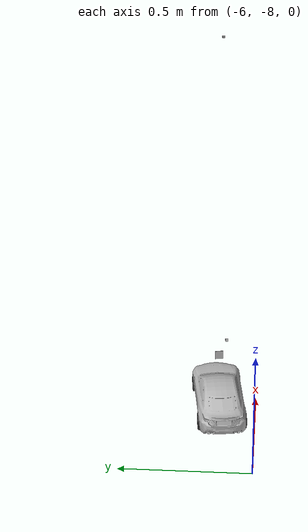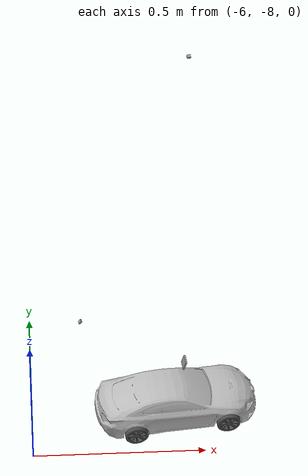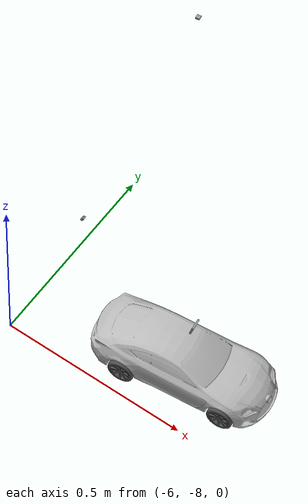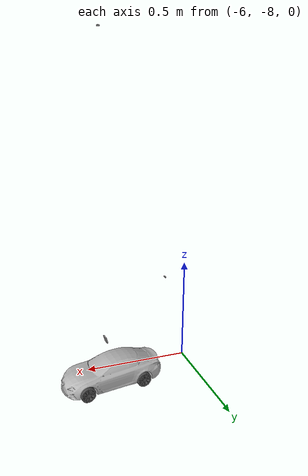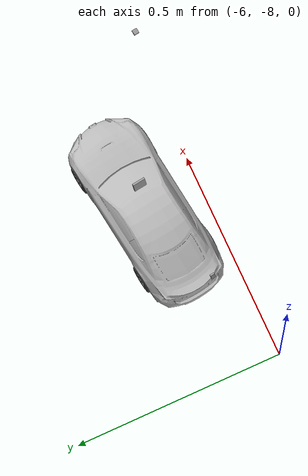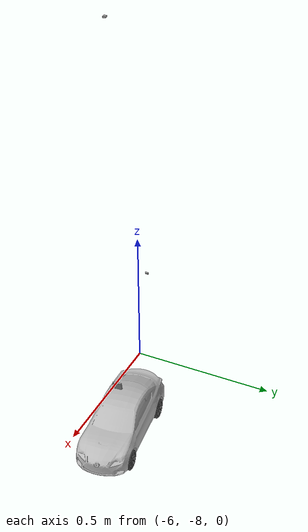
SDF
<sdf version="1.7">
 <world name="default">
  <model name="automobile">
   <frame name="chassis::__model__" attached_to="chassis::link">
    <pose relative_to="__model__">0 0 0 0 -0 0</pose>
   </frame>
   <link name="chassis::link">
    <inertial>
     <mass>0.26244</mass>
     <inertia>
      <ixx>0.00283444</ixx>
      <ixy>0</ixy>
      <ixz>0</ixz>
      <iyy>0.00039867</iyy>
      <iyz>0</iyz>
      <izz>0.00323293</izz>
     </inertia>
    </inertial>
    <pose relative_to="chassis::__model__">0 0 0 0 -0 1.5708</pose>
    <visual name="visual">
     <pose>0 0 -0.0065 0 0 -1.57079</pose>
     <geometry><mesh><uri>model://chassis/meshes/chassisV5.dae</uri><scale>1 1 1</scale></mesh></geometry>
     <material>
      <lighting>1</lighting>
      <shader type="vertex"><normal_map>__default__</normal_map></shader>
      <ambient>0.6 0.6 0.6 1</ambient>
      <diffuse>0.85 0.85 0.85 1</diffuse>
      <specular>0.6 0.6 0.6 1</specular>
      <emissive>0 0 0 1</emissive>
     </material>
    </visual>
    <collision name="collision">
     <geometry><box><size>0.135 0.36 0.002</size></box></geometry>
     <surface>
      <friction>
       <ode><mu>1</mu><mu2>1</mu2><fdir1>0 0 0</fdir1><slip1>0</slip1><slip2>0</slip2></ode>
       <torsional>
        <coefficient>1</coefficient>
        <patch_radius>0</patch_radius>
        <surface_radius>0</surface_radius>
        <use_patch_radius>1</use_patch_radius>
        <ode><slip>0</slip></ode>
       </torsional>
      </friction>
      <bounce><restitution_coefficient>0</restitution_coefficient><threshold>1e+06</threshold></bounce>
      <contact>
       <collide_without_contact>0</collide_without_contact>
       <collide_without_contact_bitmask>1</collide_without_contact_bitmask>
       <collide_bitmask>1</collide_bitmask>
       <ode>
        <soft_cfm>0</soft_cfm>
        <soft_erp>0.2</soft_erp>
        <kp>1e+13</kp>
        <kd>1</kd>
        <max_vel>0.01</max_vel>
        <min_depth>0</min_depth>
       </ode>
       <bullet>
        <split_impulse>1</split_impulse>
        <split_impulse_penetration_threshold>-0.01</split_impulse_penetration_threshold>
        <soft_cfm>0</soft_cfm>
        <soft_erp>0.2</soft_erp>
        <kp>1e+13</kp>
        <kd>1</kd>
       </bullet>
      </contact>
     </surface>
    </collision>
   </link>
   <frame name="wheel_rear_left::__model__" attached_to="wheel_rear_left::link_rim">
    <pose relative_to="__model__">-0.152 0.081 0 0 -0 0</pose>
   </frame>
   <link name="wheel_rear_left::link_rim">
    <inertial>
     <mass>0.038</mass>
     <inertia>
      <ixx>1.283e-05</ixx>
      <ixy>0</ixy>
      <ixz>0</ixz>
      <iyy>1.283e-05</iyy>
      <iyz>0</iyz>
      <izz>2.069e-05</izz>
     </inertia>
    </inertial>
    <pose relative_to="wheel_rear_left::__model__">0 0 0 1.5708 -0 0</pose>
    <visual name="visual">
     <pose>0 0 0 -1.5708 0 0</pose>
     <geometry><mesh><uri>model://wheel_left/meshes/rim.dae</uri><scale>1 1 1</scale></mesh></geometry>
     <material>
      <lighting>1</lighting>
      <shader type="vertex"><normal_map>__default__</normal_map></shader>
      <ambient>0.2 0.2 0.2 1</ambient>
      <diffuse>0.3 0.3 0.3 1</diffuse>
      <specular>0.5 0.5 0.5 1</specular>
      <emissive>0 0 0 0</emissive>
     </material>
    </visual>
    <collision name="collision">
     <geometry><cylinder><radius>0.033</radius><length>0.028</length></cylinder></geometry>
     <surface>
      <friction>
       <ode><mu>0.7</mu><mu2>0.7</mu2><fdir1>0 0 0</fdir1><slip1>0</slip1><slip2>0</slip2></ode>
       <torsional>
        <coefficient>1</coefficient>
        <patch_radius>0</patch_radius>
        <surface_radius>0</surface_radius>
        <use_patch_radius>1</use_patch_radius>
        <ode><slip>0</slip></ode>
       </torsional>
      </friction>
      <bounce><restitution_coefficient>0</restitution_coefficient><threshold>1e+06</threshold></bounce>
      <contact>
       <collide_without_contact>0</collide_without_contact>
       <collide_without_contact_bitmask>1</collide_without_contact_bitmask>
       <collide_bitmask>1</collide_bitmask>
       <ode>
        <soft_cfm>0</soft_cfm>
        <soft_erp>0.2</soft_erp>
        <kp>1e+07</kp>
        <kd>1</kd>
        <max_vel>0.01</max_vel>
        <min_depth>0</min_depth>
       </ode>
       <bullet>
        <split_impulse>1</split_impulse>
        <split_impulse_penetration_threshold>-0.01</split_impulse_penetration_threshold>
        <soft_cfm>0</soft_cfm>
        <soft_erp>0.2</soft_erp>
        <kp>1e+07</kp>
        <kd>1</kd>
       </bullet>
      </contact>
     </surface>
    </collision>
   </link>
   <frame name="wheel_rear_right::__model__" attached_to="wheel_rear_right::link_rim">
    <pose relative_to="__model__">-0.152 -0.081 0 0 -0 0</pose>
   </frame>
   <link name="wheel_rear_right::link_rim">
    <inertial>
     <mass>0.038</mass>
     <inertia>
      <ixx>1.283e-05</ixx>
      <ixy>0</ixy>
      <ixz>0</ixz>
      <iyy>1.283e-05</iyy>
      <iyz>0</iyz>
      <izz>2.069e-05</izz>
     </inertia>
    </inertial>
    <pose relative_to="wheel_rear_right::__model__">0 0 0 1.5708 -0 0</pose>
    <visual name="visual">
     <pose>0 0 0 -1.5708 0 0</pose>
     <geometry><mesh><uri>model://wheel_right/meshes/rim.dae</uri><scale>1 1 1</scale></mesh></geometry>
     <material>
      <lighting>1</lighting>
      <shader type="vertex"><normal_map>__default__</normal_map></shader>
      <ambient>0.2 0.2 0.2 1</ambient>
      <diffuse>0.3 0.3 0.3 1</diffuse>
      <specular>0.5 0.5 0.5 1</specular>
      <emissive>0 0 0 0</emissive>
     </material>
    </visual>
    <collision name="collision">
     <geometry><cylinder><radius>0.033</radius><length>0.028</length></cylinder></geometry>
     <surface>
      <friction>
       <ode><mu>0.7</mu><mu2>0.7</mu2><fdir1>0 0 0</fdir1><slip1>0</slip1><slip2>0</slip2></ode>
       <torsional>
        <coefficient>1</coefficient>
        <patch_radius>0</patch_radius>
        <surface_radius>0</surface_radius>
        <use_patch_radius>1</use_patch_radius>
        <ode><slip>0</slip></ode>
       </torsional>
      </friction>
      <bounce><restitution_coefficient>0</restitution_coefficient><threshold>1e+06</threshold></bounce>
      <contact>
       <collide_without_contact>0</collide_without_contact>
       <collide_without_contact_bitmask>1</collide_without_contact_bitmask>
       <collide_bitmask>1</collide_bitmask>
       <ode>
        <soft_cfm>0</soft_cfm>
        <soft_erp>0.2</soft_erp>
        <kp>1e+07</kp>
        <kd>1</kd>
        <max_vel>0.01</max_vel>
        <min_depth>0</min_depth>
       </ode>
       <bullet>
        <split_impulse>1</split_impulse>
        <split_impulse_penetration_threshold>-0.01</split_impulse_penetration_threshold>
        <soft_cfm>0</soft_cfm>
        <soft_erp>0.2</soft_erp>
        <kp>1e+07</kp>
        <kd>1</kd>
       </bullet>
      </contact>
     </surface>
    </collision>
   </link>
   <frame name="steer_left::__model__" attached_to="steer_left::link_steer">
    <pose relative_to="__model__">0.112 0.0725 0 0 -0 0</pose>
   </frame>
   <link name="steer_left::link_steer">
    <inertial>
     <mass>0.001</mass>
     <inertia>
      <ixx>0.00014583</ixx>
      <ixy>0</ixy>
      <ixz>0</ixz>
      <iyy>0.00014583</iyy>
      <iyz>0</iyz>
      <izz>0.000125</izz>
     </inertia>
    </inertial>
    <pose relative_to="steer_left::__model__">0 0 0 1.5708 -0 0</pose>
    <visual name="visual">
     <geometry><cylinder><radius>0.001</radius><length>0.01</length></cylinder></geometry>
     <material>
      <lighting>1</lighting>
      <script><uri>file://media/materials/scripts/gazebo.material</uri><name>Gazebo/Grey</name></script>
      <shader type="vertex"><normal_map>__default__</normal_map></shader>
      <ambient>0.3 0.3 0.3 1</ambient>
      <diffuse>0.7 0.7 0.7 1</diffuse>
      <specular>0.01 0.01 0.01 1</specular>
      <emissive>0 0 0 1</emissive>
     </material>
    </visual>
    <collision name="collision">
     <geometry><cylinder><radius>0.001</radius><length>0.01</length></cylinder></geometry>
     <surface>
      <friction>
       <ode><mu>1</mu><mu2>1</mu2><fdir1>0 0 0</fdir1><slip1>0</slip1><slip2>0</slip2></ode>
       <torsional>
        <coefficient>1</coefficient>
        <patch_radius>0</patch_radius>
        <surface_radius>0</surface_radius>
        <use_patch_radius>1</use_patch_radius>
        <ode><slip>0</slip></ode>
       </torsional>
      </friction>
      <bounce><restitution_coefficient>0</restitution_coefficient><threshold>1e+06</threshold></bounce>
      <contact>
       <collide_without_contact>0</collide_without_contact>
       <collide_without_contact_bitmask>1</collide_without_contact_bitmask>
       <collide_bitmask>1</collide_bitmask>
       <ode>
        <soft_cfm>0</soft_cfm>
        <soft_erp>0.2</soft_erp>
        <kp>1e+13</kp>
        <kd>1</kd>
        <max_vel>0.01</max_vel>
        <min_depth>0</min_depth>
       </ode>
       <bullet>
        <split_impulse>1</split_impulse>
        <split_impulse_penetration_threshold>-0.01</split_impulse_penetration_threshold>
        <soft_cfm>0</soft_cfm>
        <soft_erp>0.2</soft_erp>
        <kp>1e+13</kp>
        <kd>1</kd>
       </bullet>
      </contact>
     </surface>
    </collision>
   </link>
   <frame name="steer_right::__model__" attached_to="steer_right::link_steer">
    <pose relative_to="__model__">0.112 -0.0725 0 0 -0 0</pose>
   </frame>
   <link name="steer_right::link_steer">
    <inertial>
     <mass>0.001</mass>
     <inertia>
      <ixx>0.00014583</ixx>
      <ixy>0</ixy>
      <ixz>0</ixz>
      <iyy>0.00014583</iyy>
      <iyz>0</iyz>
      <izz>0.000125</izz>
     </inertia>
    </inertial>
    <pose relative_to="steer_right::__model__">0 0 0 1.5708 -0 0</pose>
    <visual name="visual">
     <geometry><cylinder><radius>0.001</radius><length>0.01</length></cylinder></geometry>
     <material>
      <lighting>1</lighting>
      <script><uri>file://media/materials/scripts/gazebo.material</uri><name>Gazebo/Grey</name></script>
      <shader type="vertex"><normal_map>__default__</normal_map></shader>
      <ambient>0.3 0.3 0.3 1</ambient>
      <diffuse>0.7 0.7 0.7 1</diffuse>
      <specular>0.01 0.01 0.01 1</specular>
      <emissive>0 0 0 1</emissive>
     </material>
    </visual>
    <collision name="collision">
     <geometry><cylinder><radius>0.001</radius><length>0.01</length></cylinder></geometry>
     <surface>
      <friction>
       <ode><mu>1</mu><mu2>1</mu2><fdir1>0 0 0</fdir1><slip1>0</slip1><slip2>0</slip2></ode>
       <torsional>
        <coefficient>1</coefficient>
        <patch_radius>0</patch_radius>
        <surface_radius>0</surface_radius>
        <use_patch_radius>1</use_patch_radius>
        <ode><slip>0</slip></ode>
       </torsional>
      </friction>
      <bounce><restitution_coefficient>0</restitution_coefficient><threshold>1e+06</threshold></bounce>
      <contact>
       <collide_without_contact>0</collide_without_contact>
       <collide_without_contact_bitmask>1</collide_without_contact_bitmask>
       <collide_bitmask>1</collide_bitmask>
       <ode>
        <soft_cfm>0</soft_cfm>
        <soft_erp>0.2</soft_erp>
        <kp>1e+13</kp>
        <kd>1</kd>
        <max_vel>0.01</max_vel>
        <min_depth>0</min_depth>
       </ode>
       <bullet>
        <split_impulse>1</split_impulse>
        <split_impulse_penetration_threshold>-0.01</split_impulse_penetration_threshold>
        <soft_cfm>0</soft_cfm>
        <soft_erp>0.2</soft_erp>
        <kp>1e+13</kp>
        <kd>1</kd>
       </bullet>
      </contact>
     </surface>
    </collision>
   </link>
   <frame name="wheel_front_left::__model__" attached_to="wheel_front_left::link_rim">
    <pose relative_to="__model__">0.118 0.081 0 0 -0 0</pose>
   </frame>
   <link name="wheel_front_left::link_rim">
    <inertial>
     <mass>0.038</mass>
     <inertia>
      <ixx>1.283e-05</ixx>
      <ixy>0</ixy>
      <ixz>0</ixz>
      <iyy>1.283e-05</iyy>
      <iyz>0</iyz>
      <izz>2.069e-05</izz>
     </inertia>
    </inertial>
    <pose relative_to="wheel_front_left::__model__">0 0 0 1.5708 -0 0</pose>
    <visual name="visual">
     <pose>0 0 0 -1.5708 0 0</pose>
     <geometry><mesh><uri>model://wheel_left/meshes/rim.dae</uri><scale>1 1 1</scale></mesh></geometry>
     <material>
      <lighting>1</lighting>
      <shader type="vertex"><normal_map>__default__</normal_map></shader>
      <ambient>0.2 0.2 0.2 1</ambient>
      <diffuse>0.3 0.3 0.3 1</diffuse>
      <specular>0.5 0.5 0.5 1</specular>
      <emissive>0 0 0 0</emissive>
     </material>
    </visual>
    <collision name="collision">
     <geometry><cylinder><radius>0.033</radius><length>0.028</length></cylinder></geometry>
     <surface>
      <friction>
       <ode><mu>0.7</mu><mu2>0.7</mu2><fdir1>0 0 0</fdir1><slip1>0</slip1><slip2>0</slip2></ode>
       <torsional>
        <coefficient>1</coefficient>
        <patch_radius>0</patch_radius>
        <surface_radius>0</surface_radius>
        <use_patch_radius>1</use_patch_radius>
        <ode><slip>0</slip></ode>
       </torsional>
      </friction>
      <bounce><restitution_coefficient>0</restitution_coefficient><threshold>1e+06</threshold></bounce>
      <contact>
       <collide_without_contact>0</collide_without_contact>
       <collide_without_contact_bitmask>1</collide_without_contact_bitmask>
       <collide_bitmask>1</collide_bitmask>
       <ode>
        <soft_cfm>0</soft_cfm>
        <soft_erp>0.2</soft_erp>
        <kp>1e+07</kp>
        <kd>1</kd>
        <max_vel>0.01</max_vel>
        <min_depth>0</min_depth>
       </ode>
       <bullet>
        <split_impulse>1</split_impulse>
        <split_impulse_penetration_threshold>-0.01</split_impulse_penetration_threshold>
        <soft_cfm>0</soft_cfm>
        <soft_erp>0.2</soft_erp>
        <kp>1e+07</kp>
        <kd>1</kd>
       </bullet>
      </contact>
     </surface>
    </collision>
   </link>
   <frame name="wheel_front_right::__model__" attached_to="wheel_front_right::link_rim">
    <pose relative_to="__model__">0.118 -0.081 0 0 -0 0</pose>
   </frame>
   <link name="wheel_front_right::link_rim">
    <inertial>
     <mass>0.038</mass>
     <inertia>
      <ixx>1.283e-05</ixx>
      <ixy>0</ixy>
      <ixz>0</ixz>
      <iyy>1.283e-05</iyy>
      <iyz>0</iyz>
      <izz>2.069e-05</izz>
     </inertia>
    </inertial>
    <pose relative_to="wheel_front_right::__model__">0 0 0 1.5708 -0 0</pose>
    <visual name="visual">
     <pose>0 0 0 -1.5708 0 0</pose>
     <geometry><mesh><uri>model://wheel_right/meshes/rim.dae</uri><scale>1 1 1</scale></mesh></geometry>
     <material>
      <lighting>1</lighting>
      <shader type="vertex"><normal_map>__default__</normal_map></shader>
      <ambient>0.2 0.2 0.2 1</ambient>
      <diffuse>0.3 0.3 0.3 1</diffuse>
      <specular>0.5 0.5 0.5 1</specular>
      <emissive>0 0 0 0</emissive>
     </material>
    </visual>
    <collision name="collision">
     <geometry><cylinder><radius>0.033</radius><length>0.028</length></cylinder></geometry>
     <surface>
      <friction>
       <ode><mu>0.7</mu><mu2>0.7</mu2><fdir1>0 0 0</fdir1><slip1>0</slip1><slip2>0</slip2></ode>
       <torsional>
        <coefficient>1</coefficient>
        <patch_radius>0</patch_radius>
        <surface_radius>0</surface_radius>
        <use_patch_radius>1</use_patch_radius>
        <ode><slip>0</slip></ode>
       </torsional>
      </friction>
      <bounce><restitution_coefficient>0</restitution_coefficient><threshold>1e+06</threshold></bounce>
      <contact>
       <collide_without_contact>0</collide_without_contact>
       <collide_without_contact_bitmask>1</collide_without_contact_bitmask>
       <collide_bitmask>1</collide_bitmask>
       <ode>
        <soft_cfm>0</soft_cfm>
        <soft_erp>0.2</soft_erp>
        <kp>1e+07</kp>
        <kd>1</kd>
        <max_vel>0.01</max_vel>
        <min_depth>0</min_depth>
       </ode>
       <bullet>
        <split_impulse>1</split_impulse>
        <split_impulse_penetration_threshold>-0.01</split_impulse_penetration_threshold>
        <soft_cfm>0</soft_cfm>
        <soft_erp>0.2</soft_erp>
        <kp>1e+07</kp>
        <kd>1</kd>
       </bullet>
      </contact>
     </surface>
    </collision>
   </link>
   <frame name="camera::__model__" attached_to="camera::link_camera">
    <pose relative_to="__model__">0 0 0.2 0 0.2617 0</pose>
   </frame>
   <link name="camera::link_camera">
    <inertial>
     <mass>0.0052875</mass>
     <inertia><ixx>4.1e-07</ixx><ixy>0</ixy><ixz>0</ixz><iyy>7.9e-07</iyy><iyz>0</iyz><izz>4.1e-07</izz></inertia>
    </inertial>
    <pose relative_to="camera::__model__">0 0 0 0 -0 0</pose>
    <visual name="visual">
     <geometry><box><size>0.005 0.03 0.03</size></box></geometry>
     <material>
      <lighting>1</lighting>
      <script><uri>file://media/materials/scripts/gazebo.material</uri><name>Gazebo/Grey</name></script>
      <shader type="vertex"><normal_map>__default__</normal_map></shader>
      <ambient>0.3 0.3 0.3 1</ambient>
      <diffuse>0.7 0.7 0.7 1</diffuse>
      <specular>0.01 0.01 0.01 1</specular>
      <emissive>0 0 0 1</emissive>
     </material>
    </visual>
    <collision name="collision">
     <geometry><box><size>0.005 0.03 0.03</size></box></geometry>
     <surface>
      <friction>
       <ode><mu>1</mu><mu2>1</mu2><fdir1>0 0 0</fdir1><slip1>0</slip1><slip2>0</slip2></ode>
       <torsional>
        <coefficient>1</coefficient>
        <patch_radius>0</patch_radius>
        <surface_radius>0</surface_radius>
        <use_patch_radius>1</use_patch_radius>
        <ode><slip>0</slip></ode>
       </torsional>
      </friction>
      <bounce><restitution_coefficient>0</restitution_coefficient><threshold>1e+06</threshold></bounce>
      <contact>
       <collide_without_contact>0</collide_without_contact>
       <collide_without_contact_bitmask>1</collide_without_contact_bitmask>
       <collide_bitmask>1</collide_bitmask>
       <ode>
        <soft_cfm>0</soft_cfm>
        <soft_erp>0.2</soft_erp>
        <kp>1e+13</kp>
        <kd>1</kd>
        <max_vel>0.01</max_vel>
        <min_depth>0</min_depth>
       </ode>
       <bullet>
        <split_impulse>1</split_impulse>
        <split_impulse_penetration_threshold>-0.01</split_impulse_penetration_threshold>
        <soft_cfm>0</soft_cfm>
        <soft_erp>0.2</soft_erp>
        <kp>1e+13</kp>
        <kd>1</kd>
       </bullet>
      </contact>
     </surface>
    </collision>
    <sensor name="camera1" type="camera">
     <update_rate>30</update_rate>
     <camera name="head">
      <horizontal_fov>1.08559</horizontal_fov>
      <image><width>640</width><height>480</height><format>R8G8B8</format></image>
      <clip><near>0.02</near><far>100</far></clip>
      <noise><type>gaussian</type><mean>0</mean><stddev>0</stddev></noise>
     </camera>
     <plugin name="camera_controller1" filename="libgazebo_ros_camera.so">
      <alwaysOn>1</alwaysOn>
      <updateRate>0.0</updateRate>
      <imageTopicName>image_raw</imageTopicName>
      <cameraInfoTopicName>camera_info</cameraInfoTopicName>
      <frameName>camera::link_camera</frameName>
      <ros>
       <namespace>camera</namespace>
       <remapping>image_raw:=image</remapping>
       <remapping>camera_info:=camera_info</remapping>
      </ros>
      <hackBaseline>0.0</hackBaseline>
      <distortionK1>0.0</distortionK1>
      <distortionK2>0.0</distortionK2>
      <distortionK3>0.0</distortionK3>
      <distortionT1>0.0</distortionT1>
      <distortionT2>0.0</distortionT2>
     </plugin>
    </sensor>
   </link>
   <frame name="camera_follow::__model__" attached_to="camera_follow::link_camera">
    <pose relative_to="__model__">-0.3 0 0.45 0 0.6 0</pose>
   </frame>
   <link name="camera_follow::link_camera">
    <inertial>
     <mass>0.001</mass>
     <inertia><ixx>4.1e-07</ixx><ixy>0</ixy><ixz>0</ixz><iyy>7.9e-07</iyy><iyz>0</iyz><izz>4.1e-07</izz></inertia>
    </inertial>
    <pose relative_to="camera_follow::__model__">0 0 0 0 -0 0</pose>
    <visual name="visual">
     <geometry><box><size>0.005 0.01 0.01</size></box></geometry>
     <material>
      <lighting>1</lighting>
      <script><uri>file://media/materials/scripts/gazebo.material</uri><name>Gazebo/Grey</name></script>
      <shader type="vertex"><normal_map>__default__</normal_map></shader>
      <ambient>0.3 0.3 0.3 1</ambient>
      <diffuse>0.7 0.7 0.7 1</diffuse>
      <specular>0.01 0.01 0.01 1</specular>
      <emissive>0 0 0 1</emissive>
     </material>
    </visual>
    <collision name="collision">
     <geometry><box><size>0.005 0.01 0.01</size></box></geometry>
     <surface>
      <friction>
       <ode><mu>1</mu><mu2>1</mu2><fdir1>0 0 0</fdir1><slip1>0</slip1><slip2>0</slip2></ode>
       <torsional>
        <coefficient>1</coefficient>
        <patch_radius>0</patch_radius>
        <surface_radius>0</surface_radius>
        <use_patch_radius>1</use_patch_radius>
        <ode><slip>0</slip></ode>
       </torsional>
      </friction>
      <bounce><restitution_coefficient>0</restitution_coefficient><threshold>1e+06</threshold></bounce>
      <contact>
       <collide_without_contact>0</collide_without_contact>
       <collide_without_contact_bitmask>1</collide_without_contact_bitmask>
       <collide_bitmask>1</collide_bitmask>
       <ode>
        <soft_cfm>0</soft_cfm>
        <soft_erp>0.2</soft_erp>
        <kp>1e+13</kp>
        <kd>1</kd>
        <max_vel>0.01</max_vel>
        <min_depth>0</min_depth>
       </ode>
       <bullet>
        <split_impulse>1</split_impulse>
        <split_impulse_penetration_threshold>-0.01</split_impulse_penetration_threshold>
        <soft_cfm>0</soft_cfm>
        <soft_erp>0.2</soft_erp>
        <kp>1e+13</kp>
        <kd>1</kd>
       </bullet>
      </contact>
     </surface>
    </collision>
    <sensor name="camera1" type="camera">
     <update_rate>30</update_rate>
     <camera name="head">
      <horizontal_fov>1.3708</horizontal_fov>
      <image><width>1920</width><height>1080</height><format>R8G8B8</format></image>
      <clip><near>0.02</near><far>100</far></clip>
      <noise><type>gaussian</type><mean>0</mean><stddev>0</stddev></noise>
     </camera>
     <plugin name="camera_controller2" filename="libgazebo_ros_camera.so">
      <alwaysOn>1</alwaysOn>
      <updateRate>0.0</updateRate>
      <cameraName>/rcCar/camera_follow2</cameraName>
      <imageTopicName>image_raw2</imageTopicName>
      <cameraInfoTopicName>camera_info2</cameraInfoTopicName>
      <frameName>camera_follow::link_camera</frameName>
      <ros>
       <namespace>camera_follow</namespace>
       <remapping>image_raw:=image</remapping>
       <remapping>camera_info:=camera_info</remapping>
      </ros>
      <hackBaseline>0.0</hackBaseline>
      <distortionK1>0.0</distortionK1>
      <distortionK2>0.0</distortionK2>
      <distortionK3>0.0</distortionK3>
      <distortionT1>0.0</distortionT1>
      <distortionT2>0.0</distortionT2>
     </plugin>
    </sensor>
   </link>
   <frame name="cam_birdeye_REC::__model__" attached_to="cam_birdeye_REC::link_camera">
    <pose relative_to="__model__">0 0 1.5 0 1.57079 0</pose>
   </frame>
   <link name="cam_birdeye_REC::link_camera">
    <inertial>
     <mass>0.001</mass>
     <inertia><ixx>4.1e-07</ixx><ixy>0</ixy><ixz>0</ixz><iyy>7.9e-07</iyy><iyz>0</iyz><izz>4.1e-07</izz></inertia>
    </inertial>
    <pose relative_to="cam_birdeye_REC::__model__">0 0 0 0 -0 0</pose>
    <visual name="visual">
     <geometry><box><size>0.005 0.01 0.01</size></box></geometry>
     <material>
      <lighting>1</lighting>
      <script><uri>file://media/materials/scripts/gazebo.material</uri><name>Gazebo/Grey</name></script>
      <shader type="vertex"><normal_map>__default__</normal_map></shader>
      <ambient>0.3 0.3 0.3 1</ambient>
      <diffuse>0.7 0.7 0.7 1</diffuse>
      <specular>0.01 0.01 0.01 1</specular>
      <emissive>0 0 0 1</emissive>
     </material>
    </visual>
    <collision name="collision">
     <geometry><box><size>0.005 0.01 0.01</size></box></geometry>
     <surface>
      <friction>
       <ode><mu>1</mu><mu2>1</mu2><fdir1>0 0 0</fdir1><slip1>0</slip1><slip2>0</slip2></ode>
       <torsional>
        <coefficient>1</coefficient>
        <patch_radius>0</patch_radius>
        <surface_radius>0</surface_radius>
        <use_patch_radius>1</use_patch_radius>
        <ode><slip>0</slip></ode>
       </torsional>
      </friction>
      <bounce><restitution_coefficient>0</restitution_coefficient><threshold>1e+06</threshold></bounce>
      <contact>
       <collide_without_contact>0</collide_without_contact>
       <collide_without_contact_bitmask>1</collide_without_contact_bitmask>
       <collide_bitmask>1</collide_bitmask>
       <ode>
        <soft_cfm>0</soft_cfm>
        <soft_erp>0.2</soft_erp>
        <kp>1e+13</kp>
        <kd>1</kd>
        <max_vel>0.01</max_vel>
        <min_depth>0</min_depth>
       </ode>
       <bullet>
        <split_impulse>1</split_impulse>
        <split_impulse_penetration_threshold>-0.01</split_impulse_penetration_threshold>
        <soft_cfm>0</soft_cfm>
        <soft_erp>0.2</soft_erp>
        <kp>1e+13</kp>
        <kd>1</kd>
       </bullet>
      </contact>
     </surface>
    </collision>
    <sensor name="camera1" type="camera">
     <update_rate>30</update_rate>
     <camera name="head">
      <horizontal_fov>2</horizontal_fov>
      <image><width>640</width><height>480</height><format>R8G8B8</format></image>
      <clip><near>0.02</near><far>100</far></clip>
      <noise><type>gaussian</type><mean>0</mean><stddev>0</stddev></noise>
     </camera>
     <plugin name="camera_controller3" filename="libgazebo_ros_camera.so">
      <alwaysOn>1</alwaysOn>
      <updateRate>0.0</updateRate>
      <cameraName>/rcCar/camera_birdeye</cameraName>
      <imageTopicName>image_raw3</imageTopicName>
      <cameraInfoTopicName>camera_info3</cameraInfoTopicName>
      <frameName>cam_birdeye_REC::link_camera</frameName>
      <ros>
       <namespace>camera_birdeye</namespace>
       <remapping>image_raw:=image</remapping>
       <remapping>camera_info:=camera_info</remapping>
      </ros>
      <hackBaseline>0.0</hackBaseline>
      <distortionK1>0.0</distortionK1>
      <distortionK2>0.0</distortionK2>
      <distortionK3>0.0</distortionK3>
      <distortionT1>0.0</distortionT1>
      <distortionT2>0.0</distortionT2>
     </plugin>
    </sensor>
   </link>
   <frame name="car_body::__model__" attached_to="car_body::link">
    <pose relative_to="__model__">-0.024 0 -0.028 0 -0 0</pose>
   </frame>
   <link name="car_body::link">
    <inertial>
     <mass>1</mass>
     <inertia>
      <ixx>0.166667</ixx>
      <ixy>0</ixy>
      <ixz>0</ixz>
      <iyy>0.166667</iyy>
      <iyz>0</iyz>
      <izz>0.166667</izz>
     </inertia>
    </inertial>
    <pose relative_to="car_body::__model__">0 -0 0 0 -0 0</pose>
    <visual name="visual">
     <geometry><mesh><uri>model://car_body/meshes/CarBody.dae</uri><scale>1 1 1</scale></mesh></geometry>
     <material>
      <script>
       <uri>model://car_body/materials/scripts</uri>
       <uri>model://car_body/materials/textures</uri>
       <name>CarBody/Image</name>
      </script>
     </material>
    </visual>
   </link>
   <static>0</static>
   <joint name="joint_leftrear_rim" type="revolute">
    <parent>chassis::link</parent>
    <child>wheel_rear_left::link_rim</child>
    <axis>
     <xyz>0 0 -1</xyz>
     <limit>
      <lower>-1.79769e+308</lower>
      <upper>1.79769e+308</upper>
      <effort>-1</effort>
      <velocity>-1</velocity>
     </limit>
     <dynamics>
      <spring_reference>0</spring_reference>
      <spring_stiffness>0</spring_stiffness>
      <damping>0</damping>
      <friction>0</friction>
     </dynamics>
    </axis>
    <physics>
     <ode><limit><cfm>0</cfm><erp>0.2</erp></limit><suspension><cfm>0</cfm><erp>0.2</erp></suspension></ode>
    </physics>
   </joint>
   <joint name="joint_rightrear_rim" type="revolute">
    <parent>chassis::link</parent>
    <child>wheel_rear_right::link_rim</child>
    <axis>
     <xyz>0 0 -1</xyz>
     <limit>
      <lower>-1.79769e+308</lower>
      <upper>1.79769e+308</upper>
      <effort>-1</effort>
      <velocity>-1</velocity>
     </limit>
     <dynamics>
      <spring_reference>0</spring_reference>
      <spring_stiffness>0</spring_stiffness>
      <damping>0</damping>
      <friction>0</friction>
     </dynamics>
    </axis>
    <physics>
     <ode><limit><cfm>0</cfm><erp>0.2</erp></limit><suspension><cfm>0</cfm><erp>0.2</erp></suspension></ode>
    </physics>
   </joint>
   <joint name="joint_leftfront_steer" type="revolute">
    <parent>chassis::link</parent>
    <child>steer_left::link_steer</child>
    <pose>0 0 0.005 0 -0 0</pose>
    <axis>
     <xyz>0 1 0</xyz>
     <limit>
      <lower>-1.79769e+308</lower>
      <upper>1.79769e+308</upper>
      <effort>-1</effort>
      <velocity>-1</velocity>
     </limit>
     <dynamics>
      <spring_reference>0</spring_reference>
      <spring_stiffness>0</spring_stiffness>
      <damping>0</damping>
      <friction>0</friction>
     </dynamics>
    </axis>
    <physics>
     <ode><limit><cfm>0</cfm><erp>0.2</erp></limit><suspension><cfm>0</cfm><erp>0.2</erp></suspension></ode>
    </physics>
   </joint>
   <joint name="joint_rightfront_steer" type="revolute">
    <parent>chassis::link</parent>
    <child>steer_right::link_steer</child>
    <pose>0 0 -0.005 0 -0 0</pose>
    <axis>
     <xyz>0 1 0</xyz>
     <limit>
      <lower>-1.79769e+308</lower>
      <upper>1.79769e+308</upper>
      <effort>-1</effort>
      <velocity>-1</velocity>
     </limit>
     <dynamics>
      <spring_reference>0</spring_reference>
      <spring_stiffness>0</spring_stiffness>
      <damping>0</damping>
      <friction>0</friction>
     </dynamics>
    </axis>
    <physics>
     <ode><limit><cfm>0</cfm><erp>0.2</erp></limit><suspension><cfm>0</cfm><erp>0.2</erp></suspension></ode>
    </physics>
   </joint>
   <joint name="joint_rightfront_rim" type="revolute">
    <parent>steer_right::link_steer</parent>
    <child>wheel_front_right::link_rim</child>
    <axis>
     <xyz>0 0 -1</xyz>
     <limit>
      <lower>-1.79769e+308</lower>
      <upper>1.79769e+308</upper>
      <effort>-1</effort>
      <velocity>-1</velocity>
     </limit>
     <dynamics>
      <spring_reference>0</spring_reference>
      <spring_stiffness>0</spring_stiffness>
      <damping>0</damping>
      <friction>0</friction>
     </dynamics>
    </axis>
    <physics>
     <ode><limit><cfm>0</cfm><erp>0.2</erp></limit><suspension><cfm>0</cfm><erp>0.2</erp></suspension></ode>
    </physics>
   </joint>
   <joint name="joint_leftfront_rim" type="revolute">
    <parent>steer_left::link_steer</parent>
    <child>wheel_front_left::link_rim</child>
    <axis>
     <xyz>0 0 -1</xyz>
     <limit>
      <lower>-1.79769e+308</lower>
      <upper>1.79769e+308</upper>
      <effort>-1</effort>
      <velocity>-1</velocity>
     </limit>
     <dynamics>
      <spring_reference>0</spring_reference>
      <spring_stiffness>0</spring_stiffness>
      <damping>0</damping>
      <friction>0</friction>
     </dynamics>
    </axis>
    <physics>
     <ode><limit><cfm>0</cfm><erp>0.2</erp></limit><suspension><cfm>0</cfm><erp>0.2</erp></suspension></ode>
    </physics>
   </joint>
   <joint name="joint_body" type="fixed">
    <parent>chassis::link</parent>
    <child>car_body::link</child>
    <physics>
     <ode><limit><cfm>0</cfm><erp>0.2</erp></limit><suspension><cfm>0</cfm><erp>0.2</erp></suspension></ode>
    </physics>
   </joint>
   <joint name="joint_camera" type="fixed">
    <parent>chassis::link</parent>
    <child>camera::link_camera</child>
    <physics>
     <ode><limit><cfm>0</cfm><erp>0.2</erp></limit><suspension><cfm>0</cfm><erp>0.2</erp></suspension></ode>
    </physics>
   </joint>
   <joint name="joint_camera_follow" type="fixed">
    <parent>chassis::link</parent>
    <child>camera_follow::link_camera</child>
    <physics>
     <ode><limit><cfm>0</cfm><erp>0.2</erp></limit><suspension><cfm>0</cfm><erp>0.2</erp></suspension></ode>
    </physics>
   </joint>
   <joint name="joint_cam_birdeye_REC" type="fixed">
    <parent>chassis::link</parent>
    <child>cam_birdeye_REC::link_camera</child>
    <physics>
     <ode><limit><cfm>0</cfm><erp>0.2</erp></limit><suspension><cfm>0</cfm><erp>0.2</erp></suspension></ode>
    </physics>
   </joint>
   <pose>-5.55787 -7.85592 0.032944 -4e-06 0.000375 0.123031</pose>
  </model>
 </world>
</sdf>
